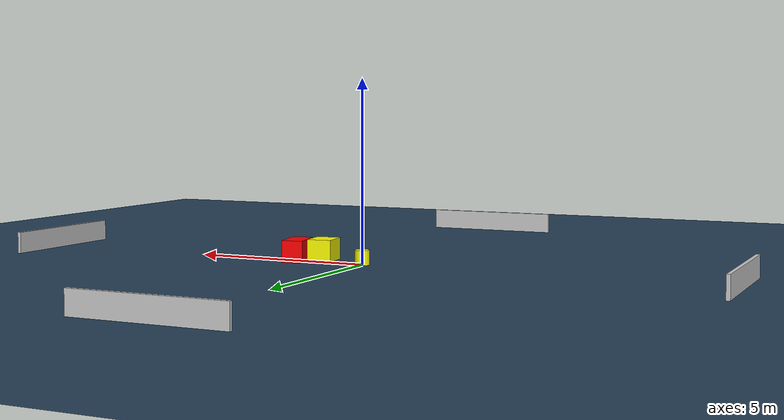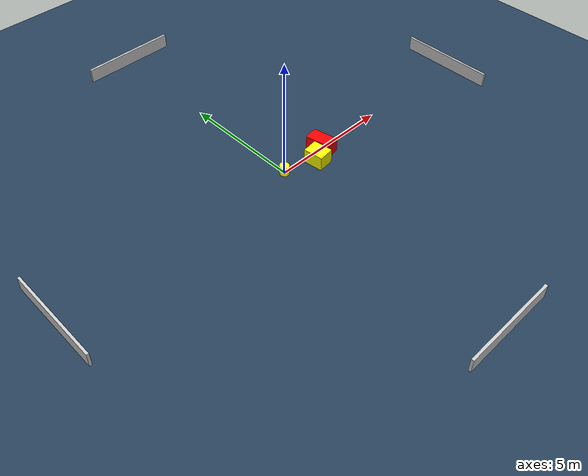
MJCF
<?xml version="1.0" ?>
<mujoco model="generated_environment">
  <option timestep="0.01" integrator="RK4" cone="elliptic"/>
  <default>
    <geom density="1"/>
  </default>
  <asset>
    <texture builtin="gradient" height="3072" name="skybox" rgb1="0.3 0.5 0.7" rgb2="0 0 0" type="skybox" width="512"/>
    <texture builtin="checker" height="300" name="groundplane" rgb1="0.2 0.3 0.4" rgb2="0.1 0.2 0.3" type="2d" width="300"/>
    <material name="groundplane" reflectance="0.2" texrepeat="5 5" texture="groundplane"/>
  </asset>
  <worldbody>
    <light dir="0 0 -1" directional="true" pos="0 0 1.5"/>
    <geom condim="3" friction="0.5 0.005 0.001" material="groundplane" name="floor" pos="0 0 0" size="0 0 0.05" type="plane"/>
    <body name="walls">
      <geom name="wall_1" condim="4" pos="-10.0 0.0 0.3" rgba="0.800000011920929 0.800000011920929 0.800000011920929 1.0" size="0.05 2.0 0.3" type="box"/>
      <geom name="wall_2" condim="4" pos="10.0 0.0 0.3" rgba="0.800000011920929 0.800000011920929 0.800000011920929 1.0" size="0.05 2.0 0.3" type="box"/>
      <geom name="wall_3" condim="4" pos="0.0 -10.0 0.3" rgba="0.800000011920929 0.800000011920929 0.800000011920929 1.0" size="2.0 0.05 0.3" type="box"/>
      <geom name="wall_4" condim="4" pos="0.0 10.0 0.3" rgba="0.800000011920929 0.800000011920929 0.800000011920929 1.0" size="2.0 0.05 0.3" type="box"/>
    </body>
    <body name="robot">
      <joint name="joint_x" type="slide" pos="0 0 0" axis="1 0 0"/>
      <joint name="joint_y" type="slide" pos="0 0 0" axis="0 1 0"/>
      <geom name="robot" type="cylinder" pos="0.0 0.0 0.2" size="0.2 0.2 0.0" mass="5.0" friction="1.0 0.005 0.0001" condim="4" rgba="1.0 1.0 0.0 1.0"/>
    </body>
    <body name="obstacle_1_movable">
      <geom name="obstacle_1_movable" condim="4" pos="1.3810123616238423 -0.4193911540904769 0.3" euler="0 0 6.858367890777046" friction="0.0 0.005 0.001" rgba="1.0 1.0 0.0 1.0" size="0.33297758645128056 0.4077679876521888 0.3" type="box" mass="0.1"/>
      <joint type="free"/>
    </body>
    <body name="obstacle_2_static">
      <geom name="obstacle_2_static" condim="4" pos="1.9925475590236514 -0.02310276928403851 0.3" euler="0 0 11.750691171525173" friction="0.0 0.005 0.001" rgba="1.0 0.0 0.0 1.0" size="0.28979143071438324 0.5225772673823974 0.3" type="box"/>
    </body>
  </worldbody>
  <actuator>
    <motor name="actuator_x" joint="joint_x" gear="1" ctrlrange="-1 1"/>
    <motor name="actuator_y" joint="joint_y" gear="1" ctrlrange="-1 1"/>
  </actuator>
</mujoco>
